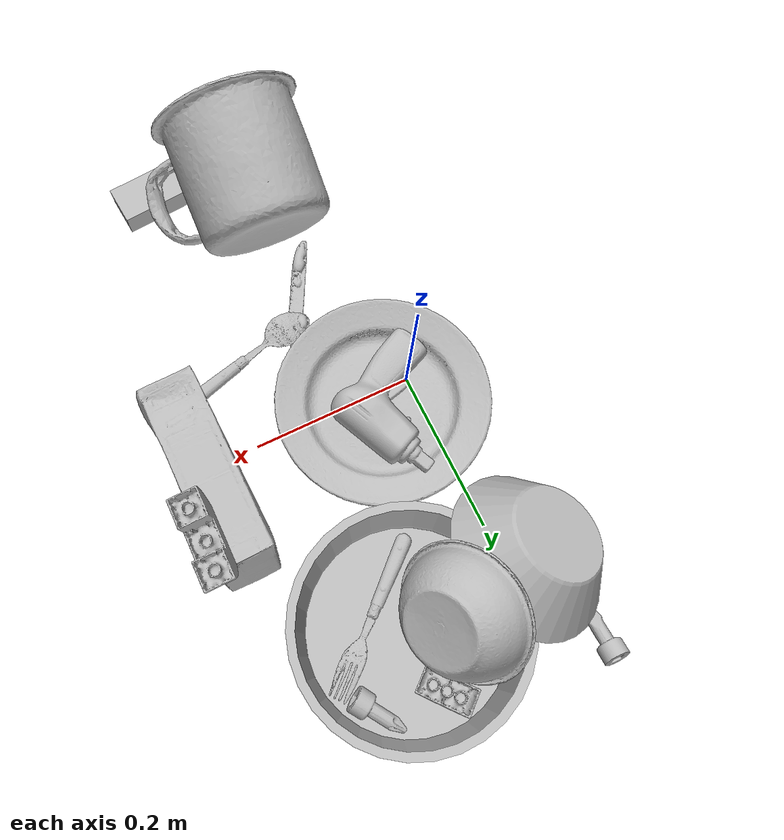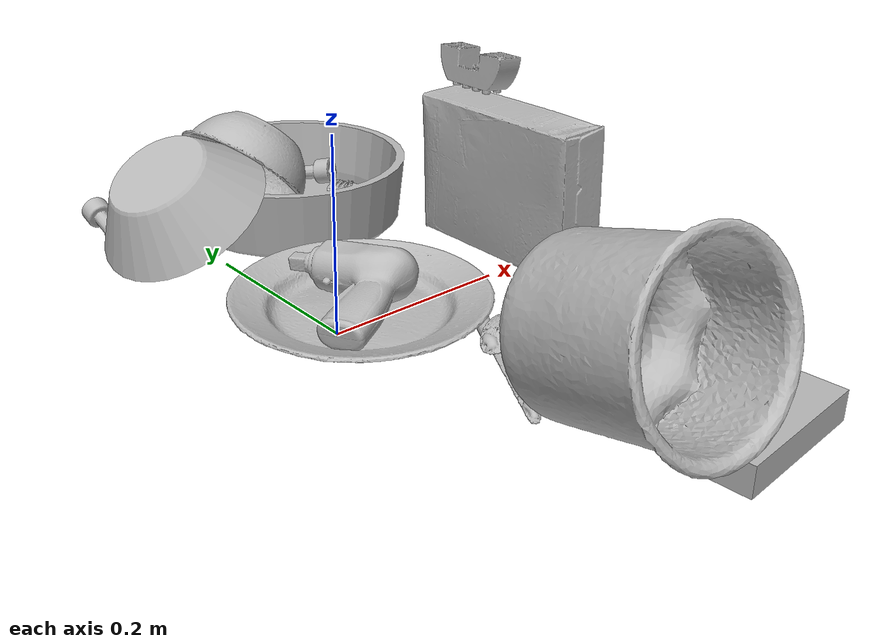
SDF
<sdf version="1.4">
  <world name="default">
    <light name="light1" type="point">
      <pose>0 0 1 0 0 0</pose>
      <diffuse>3 3 3 1</diffuse>
      <specular>3 3 3 1</specular>
    </light>
    <light name="light2" type="point">
      <pose>0 0.5 2 0 0 0</pose>
      <diffuse>1 1 1 1</diffuse>
      <specular>1 1 1 1</specular>
    </light>
    <light name="light3" type="point">
      <pose>0 0.5 2 0 0 0</pose>
      <diffuse>3 3 3 1</diffuse>
      <specular>3 3 3 1</specular>
    </light>
    <scene>
      <ambient>0.7 0.7 0.7</ambient>
    </scene>
    <model name="plate1">
      <link name="link_plate1">
        <collision name="default">
          <geometry>
            <mesh>
              <uri>model://plate/collision_meshes/collision.obj</uri>
              <scale>1.0 1.0 1.0</scale>
            </mesh>
          </geometry>
          <surface>
            <friction>
              <ode>
                <mu>0.5</mu>
                <mu2>0.5</mu2>
              </ode>
            </friction>
          <contact>
        <ode>
            <max_vel>0</max_vel>
            <min_depth>0.0001</min_depth>
            <kp>1e8</kp>
        </ode>
    </contact></surface>
        </collision>
        <visual name="default">
          <geometry>
            <mesh>
              <uri>model://plate/visual_meshes/visual.dae</uri>
              <scale>1.0 1.0 1.0</scale>
            </mesh>
          </geometry>
        </visual>
        <inertial>
          <mass>0.2627958059310913</mass>
          <pose>-0.0006044646725058556 0.00027825895813293755 -0.0010561998933553696 0.0022187866930069794 -0.0032254842153956703 0.4526099982878722</pose>
          <inertia>
            <ixx>0.0012293643</ixx>
            <iyy>0.0012176059</iyy>
            <izz>0.0024044532</izz>
            <ixy>0</ixy>
            <ixz>0</ixz>
            <iyz>0</iyz>
          </inertia>
        </inertial>
      </link>
      <pose>0.041044775396585464 0.015880201011896133 0.013733010739088058 -1.1384576929985563e-07 2.211713267057318e-08 2.393901153533648</pose>
    </model>
    <model name="plate2">
      <link name="link_plate2">
        <collision name="default">
          <geometry>
            <mesh>
              <uri>model://pan_tefal/collision_meshes/collision.obj</uri>
              <scale>1.0 1.0 1.0</scale>
            </mesh>
          </geometry>
          <surface>
            <friction>
              <ode>
                <mu>0.5</mu>
                <mu2>0.5</mu2>
              </ode>
            </friction>
          <contact>
        <ode>
            <max_vel>0</max_vel>
            <min_depth>0.0001</min_depth>
            <kp>1e8</kp>
        </ode>
    </contact></surface>
        </collision>
        <visual name="default">
          <geometry>
            <mesh>
              <uri>model://pan_tefal/visual_meshes/visual.dae</uri>
              <scale>1.0 1.0 1.0</scale>
            </mesh>
          </geometry>
        </visual>
        <inertial>
          <mass>1.5012701749801636</mass>
          <pose>-0.00018001999706029892 3.279017983004451e-05 -0.00851493701338768 0.0008190300793188327 -0.0003301349064117064 -0.3318640955526003</pose>
          <inertia>
            <ixx>0.010363197</ixx>
            <iyy>0.010430007</iyy>
            <izz>0.019076647</izz>
            <ixy>0</ixy>
            <ixz>0</ixz>
            <iyz>0</iyz>
          </inertia>
        </inertial>
      </link>
      <pose>0.13375639915466309 0.26710838079452515 0.037989601492881775 0.0003083762333891512 0.00040530733597995955 1.9016723702015603</pose>
    </model>
    <model name="bowl1">
      <link name="link_bowl1">
        <collision name="default">
          <geometry>
            <mesh>
              <uri>model://bowl_a/collision_meshes/collision.obj</uri>
              <scale>1.0 1.0 1.0</scale>
            </mesh>
          </geometry>
          <surface>
            <friction>
              <ode>
                <mu>0.5</mu>
                <mu2>0.5</mu2>
              </ode>
            </friction>
          <contact>
        <ode>
            <max_vel>0</max_vel>
            <min_depth>0.0001</min_depth>
            <kp>1e8</kp>
        </ode>
    </contact></surface>
        </collision>
        <visual name="default">
          <geometry>
            <mesh>
              <uri>model://bowl_a/visual_meshes/visual.dae</uri>
              <scale>1.0 1.0 1.0</scale>
            </mesh>
          </geometry>
        </visual>
        <inertial>
          <mass>0.25230005383491516</mass>
          <pose>0.0002786753175314516 4.731153603643179e-05 -0.001376529224216938 -0.000980537182568925 -0.0010938202432478224 -0.19123453155183487</pose>
          <inertia>
            <ixx>0.00071831</ixx>
            <iyy>0.0007227198</iyy>
            <izz>0.0012775414</izz>
            <ixy>0</ixy>
            <ixz>0</ixz>
            <iyz>0</iyz>
          </inertia>
        </inertial>
      </link>
      <pose>-0.031911544501781464 0.2525799870491028 0.07599333673715591 3.126984475606488 -0.5340298742946591 0.13579855633604535</pose>
    </model>
    <model name="bowl2">
      <link name="link_bowl2">
        <collision name="default">
          <geometry>
            <mesh>
              <uri>model://bowl/collision_meshes/collision.obj</uri>
              <scale>1.0 1.0 1.0</scale>
            </mesh>
          </geometry>
          <surface>
            <friction>
              <ode>
                <mu>0.5</mu>
                <mu2>0.5</mu2>
              </ode>
            </friction>
          <contact>
        <ode>
            <max_vel>0</max_vel>
            <min_depth>0.0001</min_depth>
            <kp>1e8</kp>
        </ode>
    </contact></surface>
        </collision>
        <visual name="default">
          <geometry>
            <mesh>
              <uri>model://bowl/visual_meshes/visual.dae</uri>
              <scale>1.0 1.0 1.0</scale>
            </mesh>
          </geometry>
        </visual>
        <inertial>
          <mass>0.09131127595901489</mass>
          <pose>0.00020444947585929185 -0.0010302107548341155 -0.0008042654953896999 -0.01576413996306862 0.014546728377416086 0.7140363947853973</pose>
          <inertia>
            <ixx>0.00020974927</ixx>
            <iyy>0.00020506265</iyy>
            <izz>0.00035287044</izz>
            <ixy>0</ixy>
            <ixz>0</ixz>
            <iyz>0</iyz>
          </inertia>
        </inertial>
      </link>
      <pose>0.09392445534467697 0.2825484275817871 0.08366238325834274 2.4541665613252777 0.4819985957388629 -0.8823842245587199</pose>
    </model>
    <model name="silverware1">
      <link name="link_silverware1">
        <collision name="default">
          <geometry>
            <mesh>
              <uri>model://knife/collision_meshes/collision.obj</uri>
              <scale>1.0 1.0 1.0</scale>
            </mesh>
          </geometry>
          <surface>
            <friction>
              <ode>
                <mu>0.5</mu>
                <mu2>0.5</mu2>
              </ode>
            </friction>
          <contact>
        <ode>
            <max_vel>0</max_vel>
            <min_depth>0.0001</min_depth>
            <kp>1e8</kp>
        </ode>
    </contact></surface>
        </collision>
        <visual name="default">
          <geometry>
            <mesh>
              <uri>model://knife/visual_meshes/visual.dae</uri>
              <scale>1.0 1.0 1.0</scale>
            </mesh>
          </geometry>
        </visual>
        <inertial>
          <mass>0.033491987735033035</mass>
          <pose>-0.023785259574651718 0.00152751209679991 5.062024501967244e-05 0.07305195921562309 0.017248415702697233 -0.007409822782391368</pose>
          <inertia>
            <ixx>9.5063825e-07</ixx>
            <iyy>0.00012867076</iyy>
            <izz>0.00012897696</izz>
            <ixy>0</ixy>
            <ixz>0</ixz>
            <iyz>0</iyz>
          </inertia>
        </inertial>
      </link>
      <pose>0.08656666427850723 -0.1350276619195938 0.006025145761668682 3.11253811216653 0.04286218653016966 -2.0536812614234443</pose>
    </model>
    <model name="box1">
      <link name="link_box1">
        <collision name="default">
          <geometry>
            <mesh>
              <uri>model://cracker_box/collision_meshes/collision.obj</uri>
              <scale>1.0 1.0 1.0</scale>
            </mesh>
          </geometry>
          <surface>
            <friction>
              <ode>
                <mu>0.5</mu>
                <mu2>0.5</mu2>
              </ode>
            </friction>
          <contact>
        <ode>
            <max_vel>0</max_vel>
            <min_depth>0.0001</min_depth>
            <kp>1e8</kp>
        </ode>
    </contact></surface>
        </collision>
        <visual name="default">
          <geometry>
            <mesh>
              <uri>model://cracker_box/visual_meshes/visual.dae</uri>
              <scale>1.0 1.0 1.0</scale>
            </mesh>
          </geometry>
        </visual>
        <inertial>
          <mass>3.401942253112793</mass>
          <pose>0.0009464150061830878 0.00025434247800149024 -0.001702953246422112 -0.00031620765582640923 -0.011106486806186075 0.0025467954673401043</pose>
          <inertia>
            <ixx>0.008653021</ixx>
            <iyy>0.014287839</iyy>
            <izz>0.020390058</izz>
            <ixy>0</ixy>
            <ixz>0</ixz>
            <iyz>0</iyz>
          </inertia>
        </inertial>
      </link>
      <pose>0.26371297240257263 0.038845255970954895 0.08175769448280334 1.5452337814370862 0.00904041092863083 1.5900318202258306</pose>
    </model>
    <model name="box2">
      <link name="link_box2">
        <collision name="default">
          <geometry>
            <mesh>
              <uri>model://jenga/collision_meshes/collision.obj</uri>
              <scale>1.0 1.0 1.0</scale>
            </mesh>
          </geometry>
          <surface>
            <friction>
              <ode>
                <mu>0.5</mu>
                <mu2>0.5</mu2>
              </ode>
            </friction>
          <contact>
        <ode>
            <max_vel>0</max_vel>
            <min_depth>0.0001</min_depth>
            <kp>1e8</kp>
        </ode>
    </contact></surface>
        </collision>
        <visual name="default">
          <geometry>
            <mesh>
              <uri>model://jenga/visual_meshes/visual.dae</uri>
              <scale>1.0 1.0 1.0</scale>
            </mesh>
          </geometry>
        </visual>
        <inertial>
          <mass>0.15917322039604187</mass>
          <pose>-2.502856091268768e-07 -0.00010250010382151231 -4.0923405322246253e-05 0.0 -7.34215461761844e-07 0.0</pose>
          <inertia>
            <ixx>4.4047094e-05</ixx>
            <iyy>0.0002984619</iyy>
            <izz>0.00031863348</izz>
            <ixy>0</ixy>
            <ixz>0</ixz>
            <iyz>0</iyz>
          </inertia>
        </inertial>
      </link>
      <pose>0.15773454308509827 -0.3692096769809723 0.014998791739344597 -0.00013731082905137039 -2.1021592141272434e-06 -3.0547413812214086</pose>
    </model>
    <model name="cup1">
      <link name="link_cup1">
        <collision name="default">
          <geometry>
            <mesh>
              <uri>model://mug/collision_meshes/collision.obj</uri>
              <scale>2.0 2.0 2.0</scale>
            </mesh>
          </geometry>
          <surface>
            <friction>
              <ode>
                <mu>0.5</mu>
                <mu2>0.5</mu2>
              </ode>
            </friction>
          <contact>
        <ode>
            <max_vel>0</max_vel>
            <min_depth>0.0001</min_depth>
            <kp>1e8</kp>
        </ode>
    </contact></surface>
        </collision>
        <visual name="default">
          <geometry>
            <mesh>
              <uri>model://mug/visual_meshes/visual.dae</uri>
              <scale>2.0 2.0 2.0</scale>
            </mesh>
          </geometry>
        </visual>
        <inertial>
          <mass>1.8939067125320435</mass>
          <pose>0.019143342971801758 0.0016286505851894617 -0.02189466543495655 -0.12983139039190478 0.08737723243087561 0.05507286357129759</pose>
          <inertia>
            <ixx>0.0075250226</ixx>
            <iyy>0.008405008</iyy>
            <izz>0.009720505</izz>
            <ixy>0</ixy>
            <ixz>0</ixz>
            <iyz>0</iyz>
          </inertia>
        </inertial>
      </link>
      <pose>0.09490549564361572 -0.2990119159221649 0.08870518952608109 -1.2345560190135432 -0.4920103697468652 2.9112516154807535</pose>
    </model>
    <model name="silverware2">
      <link name="link_silverware2">
        <collision name="default">
          <geometry>
            <mesh>
              <uri>model://fork/collision_meshes/collision.obj</uri>
              <scale>1.0 1.0 1.0</scale>
            </mesh>
          </geometry>
          <surface>
            <friction>
              <ode>
                <mu>0.5</mu>
                <mu2>0.5</mu2>
              </ode>
            </friction>
          <contact>
        <ode>
            <max_vel>0</max_vel>
            <min_depth>0.0001</min_depth>
            <kp>1e8</kp>
        </ode>
    </contact></surface>
        </collision>
        <visual name="default">
          <geometry>
            <mesh>
              <uri>model://fork/visual_meshes/visual.dae</uri>
              <scale>1.0 1.0 1.0</scale>
            </mesh>
          </geometry>
        </visual>
        <inertial>
          <mass>0.01107261423021555</mass>
          <pose>-0.02957005240023136 0.00046588238910771906 0.0003218861820641905 -0.01355183639158028 -0.010977839693189282 0.014453902572364752</pose>
          <inertia>
            <ixx>3.8815773e-07</ixx>
            <iyy>2.8907412e-05</iyy>
            <izz>2.9081024e-05</izz>
            <ixy>0</ixy>
            <ixz>0</ixz>
            <iyz>0</iyz>
          </inertia>
        </inertial>
      </link>
      <pose>0.1624860167503357 0.2363898605108261 0.014951664954423904 -3.0509479386711997 0.0030703350631342357 0.7116479464042992</pose>
    </model>
    <model name="silverware3">
      <link name="link_silverware3">
        <collision name="default">
          <geometry>
            <mesh>
              <uri>model://spoon/collision_meshes/collision.obj</uri>
              <scale>1.0 1.0 1.0</scale>
            </mesh>
          </geometry>
          <surface>
            <friction>
              <ode>
                <mu>0.5</mu>
                <mu2>0.5</mu2>
              </ode>
            </friction>
          <contact>
        <ode>
            <max_vel>0</max_vel>
            <min_depth>0.0001</min_depth>
            <kp>1e8</kp>
        </ode>
    </contact></surface>
        </collision>
        <visual name="default">
          <geometry>
            <mesh>
              <uri>model://spoon/visual_meshes/visual.dae</uri>
              <scale>1.0 1.0 1.0</scale>
            </mesh>
          </geometry>
        </visual>
        <inertial>
          <mass>0.03720218688249588</mass>
          <pose>-0.005526323337107897 -0.00160341733135283 -0.0007271655485965312 0.035216710753312216 -0.03906584126265578 0.006150608185168733</pose>
          <inertia>
            <ixx>2.0692462e-06</ixx>
            <iyy>0.00014155307</iyy>
            <izz>0.00014257352</izz>
            <ixy>0</ixy>
            <ixz>0</ixz>
            <iyz>0</iyz>
          </inertia>
        </inertial>
      </link>
      <pose>0.16946299374103546 -0.10175033658742905 0.013250211253762245 -3.1326521982139965 -0.09625014421644519 -2.9102925809342794</pose>
    </model>
    <model name="toy1">
      <link name="link_toy1">
        <collision name="default">
          <geometry>
            <mesh>
              <uri>model://e_toy_airplane/collision_meshes/collision.obj</uri>
              <scale>1.0 1.0 1.0</scale>
            </mesh>
          </geometry>
          <surface>
            <friction>
              <ode>
                <mu>0.5</mu>
                <mu2>0.5</mu2>
              </ode>
            </friction>
          <contact>
        <ode>
            <max_vel>0</max_vel>
            <min_depth>0.0001</min_depth>
            <kp>1e8</kp>
        </ode>
    </contact></surface>
        </collision>
        <visual name="default">
          <geometry>
            <mesh>
              <uri>model://e_toy_airplane/visual_meshes/visual.dae</uri>
              <scale>1.0 1.0 1.0</scale>
            </mesh>
          </geometry>
        </visual>
        <inertial>
          <mass>0.02491888962686062</mass>
          <pose>0.00011740486661437899 -2.248287455586251e-05 -0.011187204159796238 0.00551850201937057 0.009228289896812953 0.1504152046419029</pose>
          <inertia>
            <ixx>7.60553e-06</ixx>
            <iyy>7.52773e-06</iyy>
            <izz>2.2857607e-06</izz>
            <ixy>0</ixy>
            <ixz>0</ixz>
            <iyz>0</iyz>
          </inertia>
        </inertial>
      </link>
      <pose>-0.05932428687810898 0.3632183074951172 0.01033259928226471 2.425722767829523 -1.1978178742847199 -0.8494499639074246</pose>
    </model>
    <model name="toy2">
      <link name="link_toy2">
        <collision name="default">
          <geometry>
            <mesh>
              <uri>model://e_lego_duplo/collision_meshes/collision.obj</uri>
              <scale>1.0 1.0 1.0</scale>
            </mesh>
          </geometry>
          <surface>
            <friction>
              <ode>
                <mu>0.5</mu>
                <mu2>0.5</mu2>
              </ode>
            </friction>
          <contact>
        <ode>
            <max_vel>0</max_vel>
            <min_depth>0.0001</min_depth>
            <kp>1e8</kp>
        </ode>
    </contact></surface>
        </collision>
        <visual name="default">
          <geometry>
            <mesh>
              <uri>model://e_lego_duplo/visual_meshes/visual.dae</uri>
              <scale>1.0 1.0 1.0</scale>
            </mesh>
          </geometry>
        </visual>
        <inertial>
          <mass>0.08635181933641434</mass>
          <pose>0.00032560451654717326 0.0002348542184336111 0.0019521444337442517 -0.022567902749969417 -6.824781923482006e-05 -0.00762515629770681</pose>
          <inertia>
            <ixx>1.8007207e-05</ixx>
            <iyy>7.390619e-05</iyy>
            <izz>7.1969785e-05</izz>
            <ixy>0</ixy>
            <ixz>0</ixz>
            <iyz>0</iyz>
          </inertia>
        </inertial>
      </link>
      <pose>0.28538376092910767 0.11442923545837402 0.1839921921491623 3.0544848685539434 -0.0165030849486188 -1.5805142402001537</pose>
    </model>
    <model name="toy3">
      <link name="link_toy3">
        <collision name="default">
          <geometry>
            <mesh>
              <uri>model://d_toy_airplane/collision_meshes/collision.obj</uri>
              <scale>1.0 1.0 1.0</scale>
            </mesh>
          </geometry>
          <surface>
            <friction>
              <ode>
                <mu>0.5</mu>
                <mu2>0.5</mu2>
              </ode>
            </friction>
          <contact>
        <ode>
            <max_vel>0</max_vel>
            <min_depth>0.0001</min_depth>
            <kp>1e8</kp>
        </ode>
    </contact></surface>
        </collision>
        <visual name="default">
          <geometry>
            <mesh>
              <uri>model://d_toy_airplane/visual_meshes/visual.dae</uri>
              <scale>1.0 1.0 1.0</scale>
            </mesh>
          </geometry>
        </visual>
        <inertial>
          <mass>0.01398532185703516</mass>
          <pose>9.410311031388119e-05 -5.809316644445062e-05 -0.011728093959391117 0.00026700916858413164 0.004678987951971881 0.5194708538811167</pose>
          <inertia>
            <ixx>4.1925277e-06</ixx>
            <iyy>4.1956896e-06</iyy>
            <izz>1.2657512e-06</izz>
            <ixy>0</ixy>
            <ixz>0</ixz>
            <iyz>0</iyz>
          </inertia>
        </inertial>
      </link>
      <pose>0.2016884684562683 0.3331926465034485 0.01932428404688835 1.7927984301402708 0.5037052131655272 -2.4560459031849646</pose>
    </model>
    <model name="toy4">
      <link name="link_toy4">
        <collision name="default">
          <geometry>
            <mesh>
              <uri>model://b_toy_airplane/collision_meshes/collision.obj</uri>
              <scale>1.0 1.0 1.0</scale>
            </mesh>
          </geometry>
          <surface>
            <friction>
              <ode>
                <mu>0.5</mu>
                <mu2>0.5</mu2>
              </ode>
            </friction>
          <contact>
        <ode>
            <max_vel>0</max_vel>
            <min_depth>0.0001</min_depth>
            <kp>1e8</kp>
        </ode>
    </contact></surface>
        </collision>
        <visual name="default">
          <geometry>
            <mesh>
              <uri>model://b_toy_airplane/visual_meshes/visual.dae</uri>
              <scale>1.0 1.0 1.0</scale>
            </mesh>
          </geometry>
        </visual>
        <inertial>
          <mass>0.39888885617256165</mass>
          <pose>0.00508136348798871 0.0040155863389372826 0.009543065913021564 -0.04001810285123905 -0.040221831504284974 -0.560150355465512</pose>
          <inertia>
            <ixx>0.00074054446</ixx>
            <iyy>0.00029600295</iyy>
            <izz>0.00092131115</izz>
            <ixy>0</ixy>
            <ixz>0</ixz>
            <iyz>0</iyz>
          </inertia>
        </inertial>
      </link>
      <pose>0.04379275441169739 0.017577974125742912 0.03984500467777252 3.0720311653020484 0.05119428467805312 2.012054322443478</pose>
    </model>
    <model name="toy5">
      <link name="link_toy5">
        <collision name="default">
          <geometry>
            <mesh>
              <uri>model://a_lego_duplo/collision_meshes/collision.obj</uri>
              <scale>1.0 1.0 1.0</scale>
            </mesh>
          </geometry>
          <surface>
            <friction>
              <ode>
                <mu>0.5</mu>
                <mu2>0.5</mu2>
              </ode>
            </friction>
          <contact>
        <ode>
            <max_vel>0</max_vel>
            <min_depth>0.0001</min_depth>
            <kp>1e8</kp>
        </ode>
    </contact></surface>
        </collision>
        <visual name="default">
          <geometry>
            <mesh>
              <uri>model://a_lego_duplo/visual_meshes/visual.dae</uri>
              <scale>1.0 1.0 1.0</scale>
            </mesh>
          </geometry>
        </visual>
        <inertial>
          <mass>0.014756478369235992</mass>
          <pose>-0.00011337623436702415 0.00018517495482228696 0.00036926049506291747 -0.01411700810413075 -0.00012565743579302476 6.142605902116464e-05</pose>
          <inertia>
            <ixx>1.8918981e-06</ixx>
            <iyy>4.238266e-06</iyy>
            <izz>5.250033e-06</izz>
            <ixy>0</ixy>
            <ixz>0</ixz>
            <iyz>0</iyz>
          </inertia>
        </inertial>
      </link>
      <pose>0.12545928359031677 0.34323039650917053 0.01913098804652691 3.131958827224938 -0.016387799428809975 2.260479052614554</pose>
    </model>
  <physics type="ode">
      <max_contacts>50</max_contacts>
      <ode>
        <solver>
          <type>quick</type>
          <iters>75</iters>
        </solver>
        <constraints>
          <contact_max_correcting_vel>0</contact_max_correcting_vel>
          <contact_surface_layer>0</contact_surface_layer>
        </constraints>
      </ode>
    </physics></world>
</sdf>
